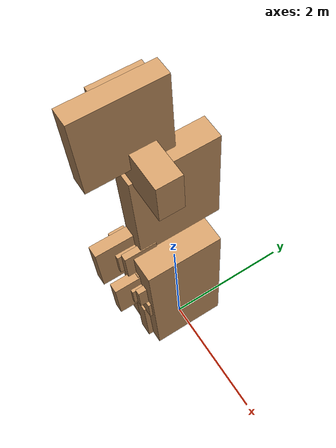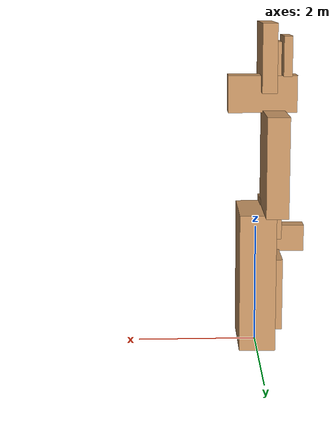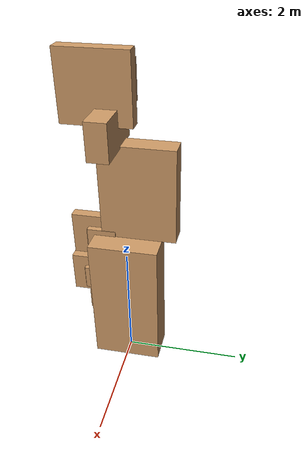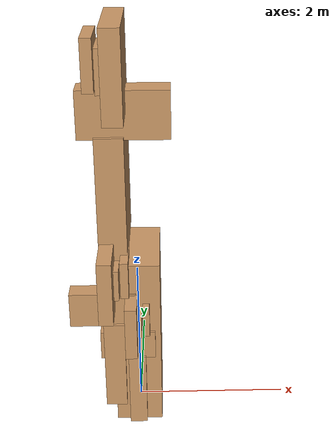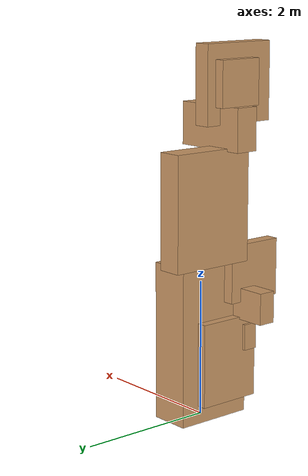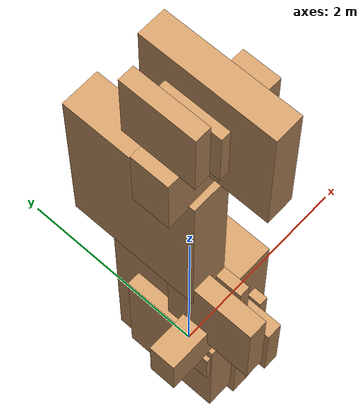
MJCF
<mujoco model="Fish">
    <compiler angle="degree" />
    <default>
		<motor ctrlrange="-1.0 1.0" ctrllimited="true" gear="1500" />
        <geom friction="1 0.5 0.5" solref=".02 1" solimp="0 .8 .01" material="self" density="50.0" />
        <joint limited="true" armature="1" damping="1" stiffness="1" solreflimit=".04 1"
            solimplimit="0 .8 .03" />
        <default class="rangefinder">
            <site type="capsule" size=".05 .5" rgba="1 0 0 .4" group="4" />
        </default>
    </default>
    <asset>
        <material name="self" rgba=".8 .6 .4 1" />
    </asset>

    <worldbody>
        <body name="seg0" pos="0.0 0.0 1.16211057">

            <camera name="floating" pos="-2 0 1" xyaxes="0 -1 0 .5 0 1" mode="trackcom" fovy="90" />

            <!-- KEEP THIS -->
            <camera name="egocentric" pos=".25 0 .11" xyaxes="0 -1 0 0 0 1" fovy="90" />

            <!-- Sensors as we need -->
            <site name="rf_xp" class="rangefinder" pos="0.25 0 0.11" zaxis="1 0 0" />
            <site name="rf_xn" class="rangefinder" pos="-0.25 0 0.11" zaxis="-1 0 0" />
            <site name="rf_yp" class="rangefinder" pos="0 0.25 0.11" zaxis="0 1 0" />
            <site name="rf_yn" class="rangefinder" pos="0 -0.25 0.11" zaxis="0 -1 0" />
            <site name="rf_xpyp" class="rangefinder" pos="0.25 0.25 0.11" zaxis="1 1 0" />
            <site name="rf_xpyn" class="rangefinder" pos="0.25 -0.25 0.11" zaxis="1 -1 0" />
            <site name="rf_xnyn" class="rangefinder" pos="-0.25 -0.25 0.11" zaxis="-1 -1 0" />
            <site name="rf_xnyp" class="rangefinder" pos="-0.25 0.25 0.11" zaxis="-1 1 0" />

            <!-- sites that visualize the x-y axis of the ant body, good for debugging -->
            <site name="x_pos" type="capsule" pos="0.5 0 0" size=".05 .5" zaxis="1 0 0"
                rgba="1 0 0 1" group="5" />
            <site name="x_neg" type="capsule" pos="-0.5 0 0" size=".05 .5" zaxis="-1 0 0"
                rgba="0 0 1 1" group="5" />
            <site name="y_pos" type="capsule" pos="0 0.5 0" size=".05 .5" zaxis="0 1 0"
                rgba="1 1 1 1" group="5" />
            <site name="y_neg" type="capsule" pos="0 -0.5 0" size=".05 .5" zaxis="0 -1 0"
                rgba="0 0 0 1" group="5" />
            <site name="port_site" pos=".5 0 0" size="0.5" rgba="1 0 0 1" group="5" />
            <site name="starboard_site" pos="-.5 0 0" size="0.5" rgba="0 1 0 1" group="5" />

            <geom name="seg0_geom" type="box" pos="0 0 0" size="0.301633716 0.5898805 1.16211057" euler="0.0 0.0 0.0" />
            <site name="seg0_site" type="box" pos="0 0 0" size="0.09 0.09 0.24" zaxis="0.2 0.2 0" rgba="1 1 0 0" />

            <body name="seg1" pos="-0.287857056 0.1876373292 1.9848579199999998">
                <joint name="seg0_to_1" range="-75 75" type="hinge" axis="0 1 0" pos="0.477163225 -0.159046888 -1.00000012 "/>
                <geom name="seg1_geom" type="box" pos="0 0 0" size="0.183293074 0.6453129 0.82274735" euler="0.0 0.0 0.0" />
                <site name="seg1_site" type="box" pos="0 0 0" size="0.09 0.09 0.24" zaxis="0.2 0.2 0" rgba="1 1 0 0" />

                <body name="seg2" pos="0.183292866 -0.4153232572 1.0920246129999998">
                    <joint name="seg1_to_2" range="0 0.01" type="hinge" axis="0 0 1" pos="-0.499999464 0.3217999 -0.976450443 "/>
                    <geom name="seg2_geom" type="box" pos="0 0 0" size="0.5727124 0.174345121 0.308027923" euler="0.0 0.0 0.0" />
                    <site name="seg2_site" type="box" pos="0 0 0" size="0.09 0.09 0.24" zaxis="0.2 0.2 0" rgba="1 1 0 0" />

                    <body name="seg3" pos="-0.09249115 -0.174345016 0.6002407220000001">
                        <joint name="seg2_to_3" range="-75 75" type="hinge" axis="0 1 0" pos="0.0807483345 0.4999997 -0.5601961 "/>
                        <geom name="seg3_geom" type="box" pos="0 0 0" size="0.1233314 0.580227 0.563156545" euler="0.0 0.0 0.0" />
                        <site name="seg3_site" type="box" pos="0 0 0" size="0.09 0.09 0.24" zaxis="0.2 0.2 0" rgba="1 1 0 0" />
                    </body>

                    <body name="seg4" pos="-0.24284553599999997 -0.10870742799999997 0.5818519169999998">
                        <joint name="seg2_to_4" range="-75 75" type="hinge" axis="0 1 0" pos="0.2120135 0.3117593 -0.9999998 "/>
                        <geom name="seg4_geom" type="box" pos="0 0 0" size="0.0599675328 0.282124281 0.2738241" euler="0.0 0.0 0.0" />
                        <site name="seg4_site" type="box" pos="0 0 0" size="0.09 0.09 0.24" zaxis="0.2 0.2 0" rgba="1 1 0 0" />
                    </body>

                    <body name="seg5" pos="-0.39211081 0.019910812 0.6331048169999998">
                        <joint name="seg2_to_5" range="-75 75" type="hinge" axis="0 1 0" pos="0.342327833 -0.05710172 -0.9999998 "/>
                        <geom name="seg5_geom" type="box" pos="0 0 0" size="0.07119193 0.334930778 0.325077" euler="0.0 0.0 0.0" />
                        <site name="seg5_site" type="box" pos="0 0 0" size="0.09 0.09 0.24" zaxis="0.2 0.2 0" rgba="1 1 0 0" />
                    </body>
                </body>
            </body>

            <body name="seg6" pos="-0.01238822938 -0.27038765 -0.6515726700000001">
                <joint name="seg0_to_6" range="-75 75" type="hinge" axis="0 1 0" pos="0.0205352176 0.229188487 -0.0 "/>
                <geom name="seg6_geom" type="box" pos="0 0 0" size="0.113738514 0.400434852 0.5105379" euler="0.0 0.0 0.0" />
                <site name="seg6_site" type="box" pos="0 0 0" size="0.09 0.09 0.24" zaxis="0.2 0.2 0" rgba="1 1 0 0" />

                <body name="seg7" pos="-0.11373853062 -0.25771904 0.677632111">
                    <joint name="seg6_to_7" range="0 0.01" type="hinge" axis="0 0 1" pos="0.50000006 0.32179895 -0.976450443 "/>
                    <geom name="seg7_geom" type="box" pos="0 0 0" size="0.3553842 0.108186059 0.191140011" euler="0.0 0.0 0.0" />
                    <site name="seg7_site" type="box" pos="0 0 0" size="0.09 0.09 0.24" zaxis="0.2 0.2 0" rgba="1 1 0 0" />

                    <body name="seg8" pos="0.0573930678 -0.10818671000000002 0.372466391">
                        <joint name="seg7_to_8" range="-75 75" type="hinge" axis="0 1 0" pos="-0.0807479247 0.5000031 -0.56019634 "/>
                        <geom name="seg8_geom" type="box" pos="0 0 0" size="0.07653061 0.360047251 0.349454522" euler="0.0 0.0 0.0" />
                        <site name="seg8_site" type="box" pos="0 0 0" size="0.09 0.09 0.24" zaxis="0.2 0.2 0" rgba="1 1 0 0" />
                    </body>

                    <body name="seg9" pos="0.1506924568 -0.06745531000000005 0.36105543800000006">
                        <joint name="seg7_to_9" range="-75 75" type="hinge" axis="0 1 0" pos="-0.212013453 0.311755955 -0.999999642 "/>
                        <geom name="seg9_geom" type="box" pos="0 0 0" size="0.0372115448 0.175066084 0.169915557" euler="0.0 0.0 0.0" />
                        <site name="seg9_site" type="box" pos="0 0 0" size="0.09 0.09 0.24" zaxis="0.2 0.2 0" rgba="1 1 0 0" />
                    </body>

                    <body name="seg10" pos="0.2433161674 0.012355804000000026 0.392859329">
                        <joint name="seg7_to_10" range="-75 75" type="hinge" axis="0 1 0" pos="-0.34232834 -0.0571044236 -0.999999642 "/>
                        <geom name="seg10_geom" type="box" pos="0 0 0" size="0.0441766 0.207834 0.201719448" euler="0.0 0.0 0.0" />
                        <site name="seg10_site" type="box" pos="0 0 0" size="0.09 0.09 0.24" zaxis="0.2 0.2 0" rgba="1 1 0 0" />
                    </body>
                </body>
            </body>

            <body name="seg11" pos="-0.301633834 -0.17062378 -0.2763173440000002">
                <joint name="seg0_to_11" range="-75 75" type="hinge" axis="0 1 0" pos="0.5000002 0.144625708 -0.116638534 "/>
                <geom name="seg11_geom" type="box" pos="0 0 0" size="0.1369438 0.482132822 0.6146995" euler="0.0 0.0 0.0" />
                <site name="seg11_site" type="box" pos="0 0 0" size="0.09 0.09 0.24" zaxis="0.2 0.2 0" rgba="1 1 0 0" />

                <body name="seg12" pos="-0.136943818 -0.31030082 0.8158849650000002">
                    <joint name="seg11_to_12" range="0 0.01" type="hinge" axis="0 0 1" pos="0.50000006 0.321800143 -0.9764507 "/>
                    <geom name="seg12_geom" type="box" pos="0 0 0" size="0.427890778 0.130258515 0.230136991" euler="0.0 0.0 0.0" />
                    <site name="seg12_site" type="box" pos="0 0 0" size="0.09 0.09 0.24" zaxis="0.2 0.2 0" rgba="1 1 0 0" />

                    <body name="seg13" pos="0.06910276399999998 -0.13025856600000002 0.4484580089999998">
                        <joint name="seg12_to_13" range="-75 75" type="hinge" axis="0 1 0" pos="-0.08074813 0.5000002 -0.5601962 "/>
                        <geom name="seg13_geom" type="box" pos="0 0 0" size="0.09214462 0.433505177 0.4207513" euler="0.0 0.0 0.0" />
                        <site name="seg13_site" type="box" pos="0 0 0" size="0.09 0.09 0.24" zaxis="0.2 0.2 0" rgba="1 1 0 0" />
                    </body>

                    <body name="seg14" pos="0.18143749199999998 -0.08121872600000007 0.43471926799999977">
                        <joint name="seg12_to_14" range="-75 75" type="hinge" axis="0 1 0" pos="-0.212013781 0.3117597 -1.0 "/>
                        <geom name="seg14_geom" type="box" pos="0 0 0" size="0.04480356 0.2107836 0.204582259" euler="0.0 0.0 0.0" />
                        <site name="seg14_site" type="box" pos="0 0 0" size="0.09 0.09 0.24" zaxis="0.2 0.2 0" rgba="1 1 0 0" />
                    </body>

                    <body name="seg15" pos="0.2929582596 0.014877313999999975 0.47301186999999983">
                        <joint name="seg12_to_15" range="-75 75" type="hinge" axis="0 1 0" pos="-0.3423283 -0.0571068972 -1.0 "/>
                        <geom name="seg15_geom" type="box" pos="0 0 0" size="0.0531896465 0.250236928 0.242874861" euler="0.0 0.0 0.0" />
                        <site name="seg15_site" type="box" pos="0 0 0" size="0.09 0.09 0.24" zaxis="0.2 0.2 0" rgba="1 1 0 0" />
                    </body>
                </body>
            </body>
        </body>
    </worldbody>

    <actuator>
        <!-- Motors for all joints -->
        <motor name="motor0_to_1" joint="seg0_to_1" />
        <motor name="motor1_to_2" joint="seg1_to_2" />
        <motor name="motor2_to_3" joint="seg2_to_3" />
        <motor name="motor2_to_4" joint="seg2_to_4" />
        <motor name="motor2_to_5" joint="seg2_to_5" />
        <motor name="motor0_to_6" joint="seg0_to_6" />
        <motor name="motor6_to_7" joint="seg6_to_7" />
        <motor name="motor7_to_8" joint="seg7_to_8" />
        <motor name="motor7_to_9" joint="seg7_to_9" />
        <motor name="motor7_to_10" joint="seg7_to_10" />
        <motor name="motor0_to_11" joint="seg0_to_11" />
        <motor name="motor11_to_12" joint="seg11_to_12" />
        <motor name="motor12_to_13" joint="seg12_to_13" />
        <motor name="motor12_to_14" joint="seg12_to_14" />
        <motor name="motor12_to_15" joint="seg12_to_15" />
    </actuator>

    <sensor>
        <!-- Sensors for touch and other info -->
        <touch name="seg0_touch" site="seg0_site" />
        <touch name="seg1_touch" site="seg1_site" />
        <touch name="seg2_touch" site="seg2_site" />
        <touch name="seg3_touch" site="seg3_site" />
        <touch name="seg4_touch" site="seg4_site" />
        <touch name="seg5_touch" site="seg5_site" />
        <touch name="seg6_touch" site="seg6_site" />
        <touch name="seg7_touch" site="seg7_site" />
        <touch name="seg8_touch" site="seg8_site" />
        <touch name="seg9_touch" site="seg9_site" />
        <touch name="seg10_touch" site="seg10_site" />
        <touch name="seg11_touch" site="seg11_site" />
        <touch name="seg12_touch" site="seg12_site" />
        <touch name="seg13_touch" site="seg13_site" />
        <touch name="seg14_touch" site="seg14_site" />
        <touch name="seg15_touch" site="seg15_site" />
        <velocimeter name="torso_vel" site="seg0_site" />
        <gyro name="torso_gyro" site="seg0_site" />
        <accelerometer name="torso_accel" site="seg0_site" />
    </sensor>

    <contact>
        <!-- Contact Exclusions (should be everything) -->
        <exclude body1="seg0" body2="seg1" />
        <exclude body1="seg0" body2="seg2" />
        <exclude body1="seg0" body2="seg3" />
        <exclude body1="seg0" body2="seg4" />
        <exclude body1="seg0" body2="seg5" />
        <exclude body1="seg0" body2="seg6" />
        <exclude body1="seg0" body2="seg7" />
        <exclude body1="seg0" body2="seg8" />
        <exclude body1="seg0" body2="seg9" />
        <exclude body1="seg0" body2="seg10" />
        <exclude body1="seg0" body2="seg11" />
        <exclude body1="seg0" body2="seg12" />
        <exclude body1="seg0" body2="seg13" />
        <exclude body1="seg0" body2="seg14" />
        <exclude body1="seg0" body2="seg15" />
        <exclude body1="seg1" body2="seg2" />
        <exclude body1="seg1" body2="seg3" />
        <exclude body1="seg1" body2="seg4" />
        <exclude body1="seg1" body2="seg5" />
        <exclude body1="seg1" body2="seg6" />
        <exclude body1="seg1" body2="seg7" />
        <exclude body1="seg1" body2="seg8" />
        <exclude body1="seg1" body2="seg9" />
        <exclude body1="seg1" body2="seg10" />
        <exclude body1="seg1" body2="seg11" />
        <exclude body1="seg1" body2="seg12" />
        <exclude body1="seg1" body2="seg13" />
        <exclude body1="seg1" body2="seg14" />
        <exclude body1="seg1" body2="seg15" />
        <exclude body1="seg2" body2="seg3" />
        <exclude body1="seg2" body2="seg4" />
        <exclude body1="seg2" body2="seg5" />
        <exclude body1="seg2" body2="seg6" />
        <exclude body1="seg2" body2="seg7" />
        <exclude body1="seg2" body2="seg8" />
        <exclude body1="seg2" body2="seg9" />
        <exclude body1="seg2" body2="seg10" />
        <exclude body1="seg2" body2="seg11" />
        <exclude body1="seg2" body2="seg12" />
        <exclude body1="seg2" body2="seg13" />
        <exclude body1="seg2" body2="seg14" />
        <exclude body1="seg2" body2="seg15" />
        <exclude body1="seg3" body2="seg4" />
        <exclude body1="seg3" body2="seg5" />
        <exclude body1="seg3" body2="seg6" />
        <exclude body1="seg3" body2="seg7" />
        <exclude body1="seg3" body2="seg8" />
        <exclude body1="seg3" body2="seg9" />
        <exclude body1="seg3" body2="seg10" />
        <exclude body1="seg3" body2="seg11" />
        <exclude body1="seg3" body2="seg12" />
        <exclude body1="seg3" body2="seg13" />
        <exclude body1="seg3" body2="seg14" />
        <exclude body1="seg3" body2="seg15" />
        <exclude body1="seg4" body2="seg5" />
        <exclude body1="seg4" body2="seg6" />
        <exclude body1="seg4" body2="seg7" />
        <exclude body1="seg4" body2="seg8" />
        <exclude body1="seg4" body2="seg9" />
        <exclude body1="seg4" body2="seg10" />
        <exclude body1="seg4" body2="seg11" />
        <exclude body1="seg4" body2="seg12" />
        <exclude body1="seg4" body2="seg13" />
        <exclude body1="seg4" body2="seg14" />
        <exclude body1="seg4" body2="seg15" />
        <exclude body1="seg5" body2="seg6" />
        <exclude body1="seg5" body2="seg7" />
        <exclude body1="seg5" body2="seg8" />
        <exclude body1="seg5" body2="seg9" />
        <exclude body1="seg5" body2="seg10" />
        <exclude body1="seg5" body2="seg11" />
        <exclude body1="seg5" body2="seg12" />
        <exclude body1="seg5" body2="seg13" />
        <exclude body1="seg5" body2="seg14" />
        <exclude body1="seg5" body2="seg15" />
        <exclude body1="seg6" body2="seg7" />
        <exclude body1="seg6" body2="seg8" />
        <exclude body1="seg6" body2="seg9" />
        <exclude body1="seg6" body2="seg10" />
        <exclude body1="seg6" body2="seg11" />
        <exclude body1="seg6" body2="seg12" />
        <exclude body1="seg6" body2="seg13" />
        <exclude body1="seg6" body2="seg14" />
        <exclude body1="seg6" body2="seg15" />
        <exclude body1="seg7" body2="seg8" />
        <exclude body1="seg7" body2="seg9" />
        <exclude body1="seg7" body2="seg10" />
        <exclude body1="seg7" body2="seg11" />
        <exclude body1="seg7" body2="seg12" />
        <exclude body1="seg7" body2="seg13" />
        <exclude body1="seg7" body2="seg14" />
        <exclude body1="seg7" body2="seg15" />
        <exclude body1="seg8" body2="seg9" />
        <exclude body1="seg8" body2="seg10" />
        <exclude body1="seg8" body2="seg11" />
        <exclude body1="seg8" body2="seg12" />
        <exclude body1="seg8" body2="seg13" />
        <exclude body1="seg8" body2="seg14" />
        <exclude body1="seg8" body2="seg15" />
        <exclude body1="seg9" body2="seg10" />
        <exclude body1="seg9" body2="seg11" />
        <exclude body1="seg9" body2="seg12" />
        <exclude body1="seg9" body2="seg13" />
        <exclude body1="seg9" body2="seg14" />
        <exclude body1="seg9" body2="seg15" />
        <exclude body1="seg10" body2="seg11" />
        <exclude body1="seg10" body2="seg12" />
        <exclude body1="seg10" body2="seg13" />
        <exclude body1="seg10" body2="seg14" />
        <exclude body1="seg10" body2="seg15" />
        <exclude body1="seg11" body2="seg12" />
        <exclude body1="seg11" body2="seg13" />
        <exclude body1="seg11" body2="seg14" />
        <exclude body1="seg11" body2="seg15" />
        <exclude body1="seg12" body2="seg13" />
        <exclude body1="seg12" body2="seg14" />
        <exclude body1="seg12" body2="seg15" />
        <exclude body1="seg13" body2="seg14" />
        <exclude body1="seg13" body2="seg15" />
        <exclude body1="seg14" body2="seg15" />
    </contact>
</mujoco>
